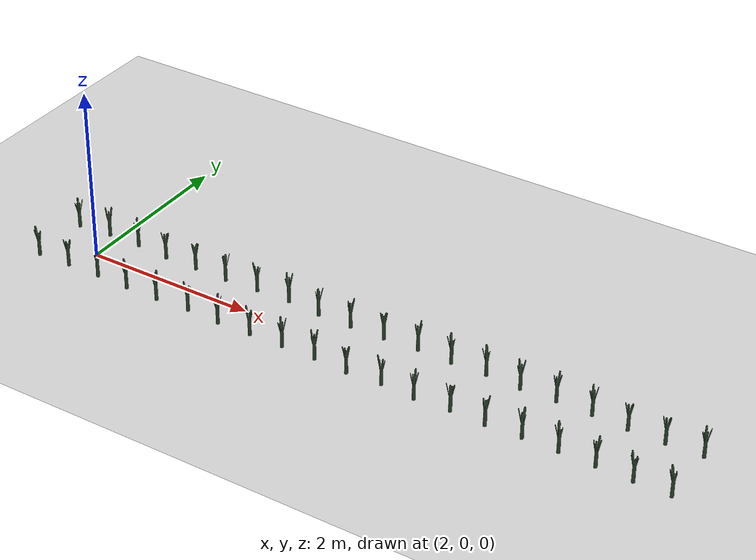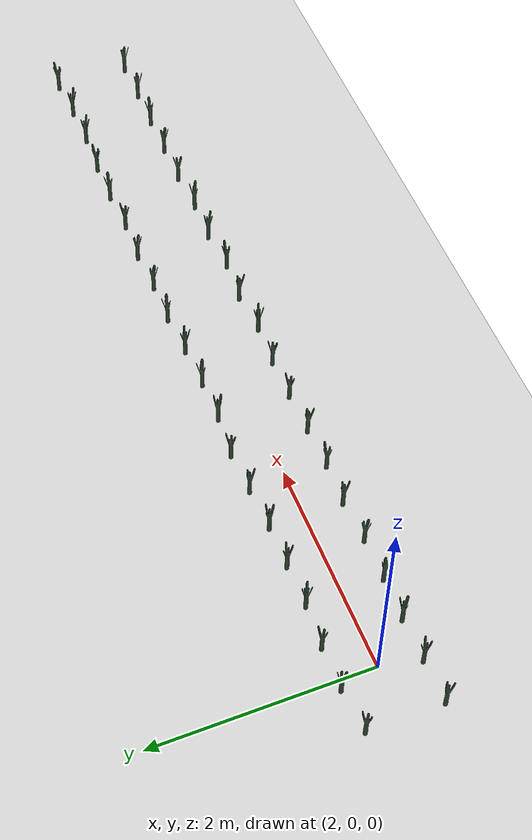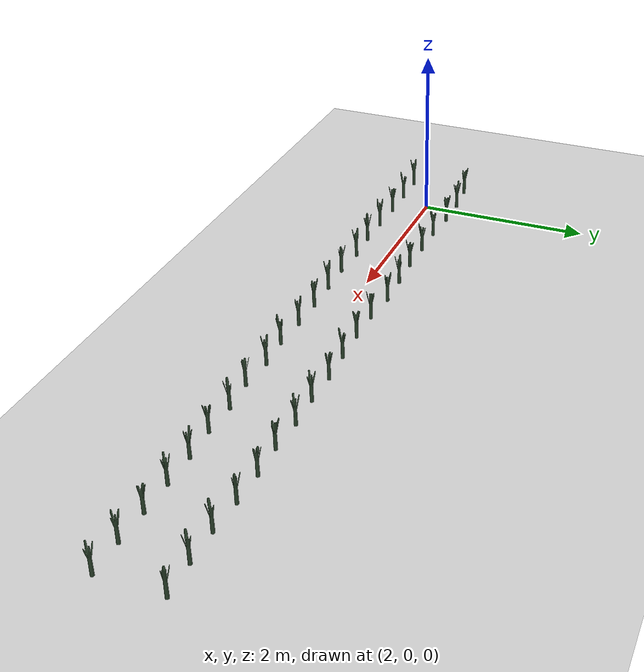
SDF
<sdf version="1.6">
 <world name="default">
  <light name="sun" type="directional">
   <pose>0 0 10 0 -0 0</pose>
   <diffuse>0.5 0.5 0.5 1</diffuse>
   <specular>0.1 0.1 0.1 1</specular>
   <attenuation>
    <range>1000</range>
    <constant>0.9</constant>
    <linear>0.01</linear>
    <quadratic>0.001</quadratic>
   </attenuation>
   <direction>0.9 0.5 -1</direction>
  </light>
  <scene><background>130 200 255 1</background><ambient>130 140 140 1</ambient></scene>
  <include><uri>model://dirt_plane</uri></include>
  <include>
   <uri>model://Leek</uri>
   <pose>1.500000 0.334727 0.15 0 0 -137.454728</pose>
   <static>0</static>
  </include>
  <include><uri>model://Leek</uri><pose>1.900000 0.368313 0.15 0 0 164.814091</pose><static>0</static></include>
  <include><uri>model://Leek</uri><pose>2.300000 0.366134 0.15 0 0 145.205528</pose><static>0</static></include>
  <include>
   <uri>model://Leek</uri>
   <pose>2.700000 0.337199 0.15 0 0 -115.204595</pose>
   <static>0</static>
  </include>
  <include><uri>model://Leek</uri><pose>3.100000 0.339339 0.15 0 0 -95.945198</pose><static>0</static></include>
  <include>
   <uri>model://Leek</uri>
   <pose>3.500000 0.335900 0.15 0 0 -126.898065</pose>
   <static>0</static>
  </include>
  <include><uri>model://Leek</uri><pose>3.900000 0.354548 0.15 0 0 40.932616</pose><static>0</static></include>
  <include><uri>model://Leek</uri><pose>4.300000 0.369657 0.15 0 0 176.917198</pose><static>0</static></include>
  <include>
   <uri>model://Leek</uri>
   <pose>4.700000 0.332435 0.15 0 0 -158.083614</pose>
   <static>0</static>
  </include>
  <include>
   <uri>model://Leek</uri>
   <pose>5.100000 0.331106 0.15 0 0 -170.042189</pose>
   <static>0</static>
  </include>
  <include><uri>model://Leek</uri><pose>5.500000 0.342808 0.15 0 0 -64.724287</pose><static>0</static></include>
  <include><uri>model://Leek</uri><pose>5.900000 0.364638 0.15 0 0 131.742809</pose><static>0</static></include>
  <include><uri>model://Leek</uri><pose>6.300000 0.355840 0.15 0 0 52.558236</pose><static>0</static></include>
  <include><uri>model://Leek</uri><pose>6.700000 0.369794 0.15 0 0 178.149512</pose><static>0</static></include>
  <include><uri>model://Leek</uri><pose>7.100000 0.350794 0.15 0 0 7.144251</pose><static>0</static></include>
  <include><uri>model://Leek</uri><pose>7.500000 0.366750 0.15 0 0 150.751394</pose><static>0</static></include>
  <include><uri>model://Leek</uri><pose>7.900000 0.361225 0.15 0 0 101.027268</pose><static>0</static></include>
  <include><uri>model://Leek</uri><pose>8.300000 0.339969 0.15 0 0 -90.280551</pose><static>0</static></include>
  <include><uri>model://Leek</uri><pose>8.700000 0.343456 0.15 0 0 -58.895740</pose><static>0</static></include>
  <include><uri>model://Leek</uri><pose>9.100000 0.359824 0.15 0 0 88.415924</pose><static>0</static></include>
  <include>
   <uri>model://Leek</uri>
   <pose>1.500000 -0.357356 0.15 0 0 -66.200879</pose>
   <static>0</static>
  </include>
  <include><uri>model://Leek</uri><pose>1.900000 -0.349512 0.15 0 0 4.396206</pose><static>0</static></include>
  <include><uri>model://Leek</uri><pose>2.300000 -0.345922 0.15 0 0 36.704051</pose><static>0</static></include>
  <include>
   <uri>model://Leek</uri>
   <pose>2.700000 -0.358789 0.15 0 0 -79.098313</pose>
   <static>0</static>
  </include>
  <include>
   <uri>model://Leek</uri>
   <pose>3.100000 -0.360955 0.15 0 0 -98.598227</pose>
   <static>0</static>
  </include>
  <include><uri>model://Leek</uri><pose>3.500000 -0.339185 0.15 0 0 97.336322</pose><static>0</static></include>
  <include>
   <uri>model://Leek</uri>
   <pose>3.900000 -0.359037 0.15 0 0 -81.330913</pose>
   <static>0</static>
  </include>
  <include><uri>model://Leek</uri><pose>4.300000 -0.348970 0.15 0 0 9.273658</pose><static>0</static></include>
  <include><uri>model://Leek</uri><pose>4.700000 -0.341539 0.15 0 0 76.151029</pose><static>0</static></include>
  <include><uri>model://Leek</uri><pose>5.100000 -0.342880 0.15 0 0 64.079889</pose><static>0</static></include>
  <include>
   <uri>model://Leek</uri>
   <pose>5.500000 -0.364883 0.15 0 0 -133.949017</pose>
   <static>0</static>
  </include>
  <include>
   <uri>model://Leek</uri>
   <pose>5.900000 -0.336390 0.15 0 0 122.492295</pose>
   <static>0</static>
  </include>
  <include>
   <uri>model://Leek</uri>
   <pose>6.300000 -0.368133 0.15 0 0 -163.197696</pose>
   <static>0</static>
  </include>
  <include>
   <uri>model://Leek</uri>
   <pose>6.700000 -0.337010 0.15 0 0 116.908343</pose>
   <static>0</static>
  </include>
  <include><uri>model://Leek</uri><pose>7.100000 -0.350762 0.15 0 0 -6.854583</pose><static>0</static></include>
  <include>
   <uri>model://Leek</uri>
   <pose>7.500000 -0.330966 0.15 0 0 171.307037</pose>
   <static>0</static>
  </include>
  <include>
   <uri>model://Leek</uri>
   <pose>7.900000 -0.331597 0.15 0 0 165.631062</pose>
   <static>0</static>
  </include>
  <include>
   <uri>model://Leek</uri>
   <pose>8.300000 -0.334653 0.15 0 0 138.121694</pose>
   <static>0</static>
  </include>
  <include><uri>model://Leek</uri><pose>8.700000 -0.342018 0.15 0 0 71.835515</pose><static>0</static></include>
  <include><uri>model://Leek</uri><pose>9.100000 -0.340648 0.15 0 0 84.167397</pose><static>0</static></include>
 </world>
</sdf>

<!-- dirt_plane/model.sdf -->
<sdf version="1.4">
<model name="dirt_plane">
  <static>true</static>
    <link name="link">
      <collision name="collision">
        <geometry>
          <plane>
            <normal>0 0 1</normal>
            <size>100 100</size>
          </plane>
        </geometry>
        <surface>
          <friction>
            <ode>
              <mu>100</mu>
              <mu2>50</mu2>
            </ode>
          </friction>
        </surface>
      </collision>
      <visual name="visual">
        <cast_shadows>false</cast_shadows>
        <geometry>
          <plane>
            <normal>0 0 1</normal>
            <size>100 100</size>
          </plane>
        </geometry>
        <material>
          <script>
            <uri>model://ground_plane/materials/scripts/my_ground_plane.material</uri>
            <uri>model://ground_plane/materials/textures</uri>
            <name>my_ground_plane/Dirt</name>
          </script>
        </material>
      </visual>
    </link>
  </model>
</sdf>

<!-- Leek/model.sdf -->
<sdf version='1.6'>
  <model name='Leek'>
    <link name='link'>
      <pose frame=''>0 0 0 0 -0 0</pose>
      <inertial>
        <mass>1</mass>
        <inertia>
          <ixx>0.145833</ixx>
          <ixy>0</ixy>
          <ixz>0</ixz>
          <iyy>0.145833</iyy>
          <iyz>0</iyz>
          <izz>0.125</izz>
        </inertia>
        <pose frame=''>0 0 0 0 -0 0</pose>
      </inertial>
      <self_collide>0</self_collide>
      <kinematic>0</kinematic>
      <gravity>1</gravity>
      <visual name='visual'>
        <geometry>
          <mesh>
            <uri>model://Leek/Poireau.dae</uri>
            <scale>1 1 1</scale>
          </mesh>
        </geometry>
        <material>
          <script>
            <name>Gazebo/Grey</name>
            <uri>file://media/materials/scripts/gazebo.material</uri>
          </script>
          <ambient>0.3 0.7 0.4 0</ambient>
          <diffuse>0.2 0.3 0.2 0</diffuse>
          <specular>0 0 0 1</specular>
          <emissive>0 0 0 1</emissive>
          <shader type='vertex'>
            <normal_map>__default__</normal_map>
          </shader>
        </material>
        <pose frame=''>0 0 -0.08 0 -0 0</pose>
        <cast_shadows>1</cast_shadows>
        <transparency>0</transparency>
      </visual>
      <collision name='collision'>
        <laser_retro>0</laser_retro>
        <max_contacts>10</max_contacts>
        <pose frame=''>0 0 0 0 -0 0</pose>
        <geometry>
          <cylinder>
            <radius>0.02</radius>
            <length>0.25</length>
          </cylinder>
        </geometry>
        <surface>
          <friction>
            <ode>
              <mu>1</mu>
              <mu2>1</mu2>
              <fdir1>0 0 0</fdir1>
              <slip1>0</slip1>
              <slip2>0</slip2>
            </ode>
            <torsional>
              <coefficient>1</coefficient>
              <patch_radius>0</patch_radius>
              <surface_radius>0</surface_radius>
              <use_patch_radius>1</use_patch_radius>
              <ode>
                <slip>0</slip>
              </ode>
            </torsional>
          </friction>
          <bounce>
            <restitution_coefficient>0</restitution_coefficient>
            <threshold>1e+06</threshold>
          </bounce>
          <contact>
            <collide_without_contact>0</collide_without_contact>
            <collide_without_contact_bitmask>1</collide_without_contact_bitmask>
            <collide_bitmask>1</collide_bitmask>
            <ode>
              <soft_cfm>0</soft_cfm>
              <soft_erp>0.2</soft_erp>
              <kp>1e+13</kp>
              <kd>1</kd>
              <max_vel>0.01</max_vel>
              <min_depth>0</min_depth>
            </ode>
            <bullet>
              <split_impulse>1</split_impulse>
              <split_impulse_penetration_threshold>-0.01</split_impulse_penetration_threshold>
              <soft_cfm>0</soft_cfm>
              <soft_erp>0.2</soft_erp>
              <kp>1e+13</kp>
              <kd>1</kd>
            </bullet>
          </contact>
        </surface>
      </collision>
    </link>
    <static>0</static>
    <allow_auto_disable>1</allow_auto_disable>
  </model>
</sdf>
